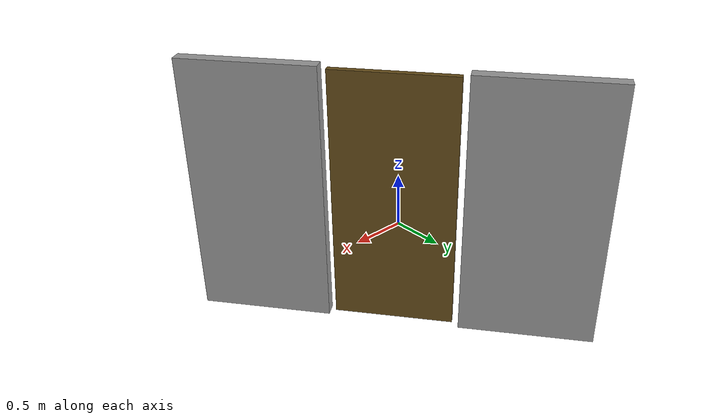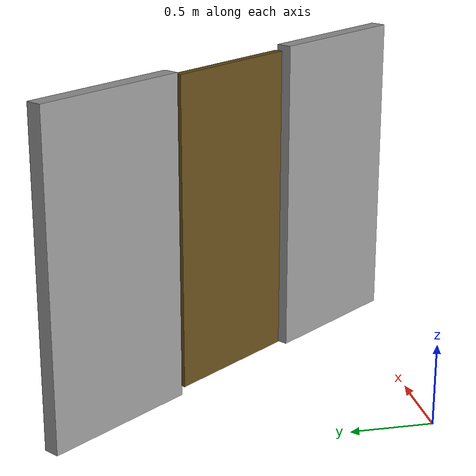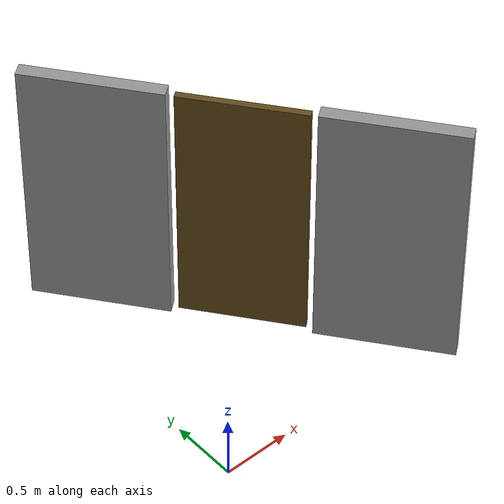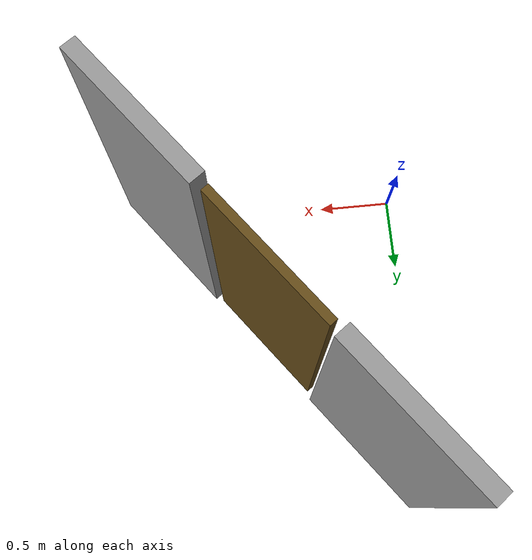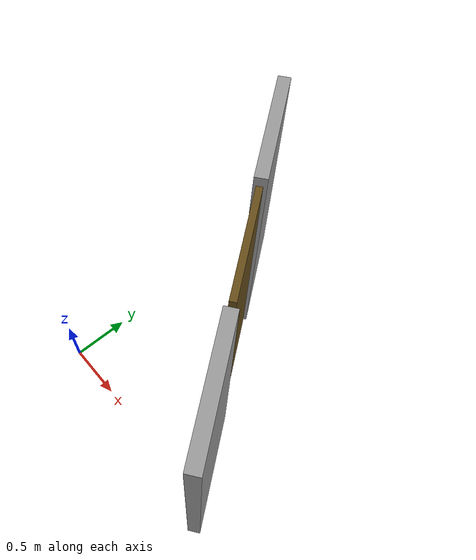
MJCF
<mujoco model="door">
    <option gravity="0 0 -9.81" />
    <compiler angle="radian" />

    <worldbody>

        <body name="door" pos="1.0 1.0 0.0" quat="0.9 0 0 0.3">
            <geom name="wall_geom_right" type="box" size="0.05 0.5 1" pos="0 -1 1"
                rgba="0.6 0.6 0.6 1"
                contype="2" conaffinity="1" />
            <geom name="wall_geom_left" type="box" size="0.05 0.5 1" pos="0 1 1"
                rgba="0.6 0.6 0.6 1"
                contype="2" conaffinity="1" />

            <body name="door_panel" pos="0 0.5 0">
                <joint name="door_joint" type="hinge" pos="0 0 0" axis="0 0 1" range="-1.57 0"
                    springref="0" />
                <geom name="door_geom" type="box" size="0.025 0.45 0.975" pos="0 -0.5 1"
                    rgba="0.4 0.3 0.1 1.0"
                    contype="2" conaffinity="1" mass="20.0" />
            </body>
        </body>
    </worldbody>

    <actuator>
        <motor name="door_joint" joint="door_joint" ctrllimited="true" ctrlrange="-100 100" />
    </actuator>

    <sensor>
        <!-- door sensors -->
        <framepos name="door_pos" objtype="xbody" objname="door" />
        <framequat name="door_quat" objtype="xbody" objname="door" />
        <framelinvel name="door_linvel" objtype="xbody" objname="door" />
        <frameangvel name="door_angvel" objtype="xbody" objname="door" />

        <!-- door panel sensors -->
        <framepos name="door_panel_pos" objtype="xbody" objname="door_panel" />
        <framequat name="door_panel_quat" objtype="xbody" objname="door_panel" />
        <framelinvel name="door_panel_linvel" objtype="xbody" objname="door_panel" />
        <frameangvel name="door_panel_angvel" objtype="xbody" objname="door_panel" />
    </sensor>

</mujoco>
